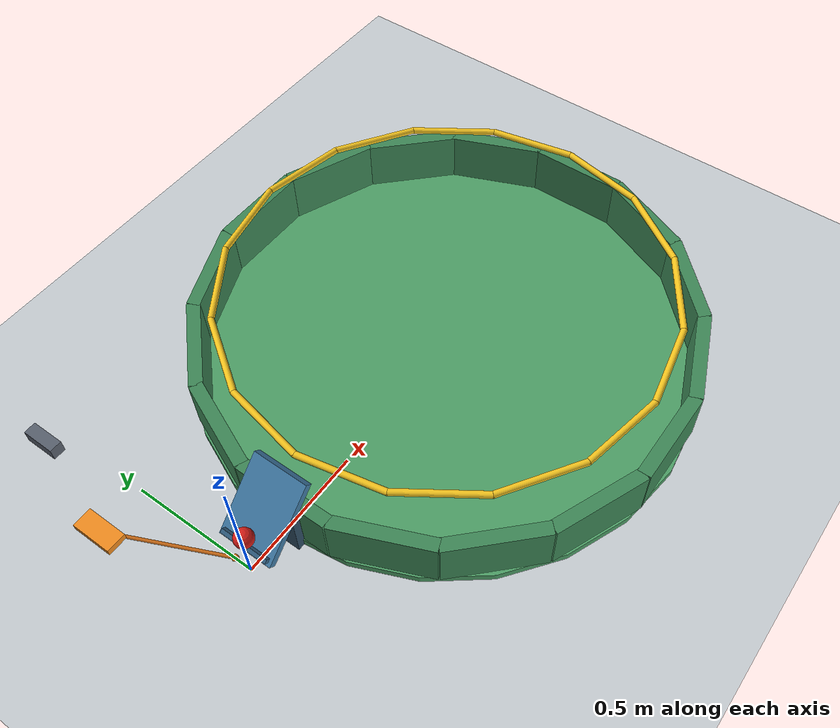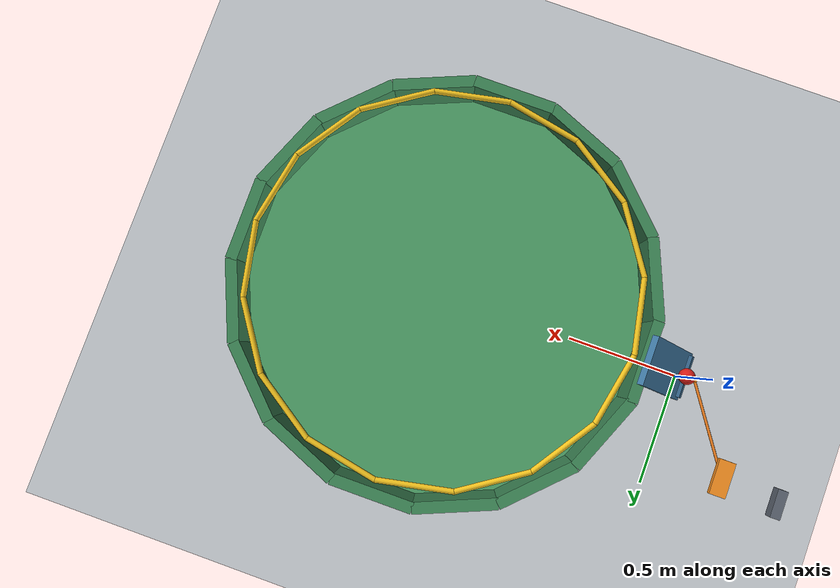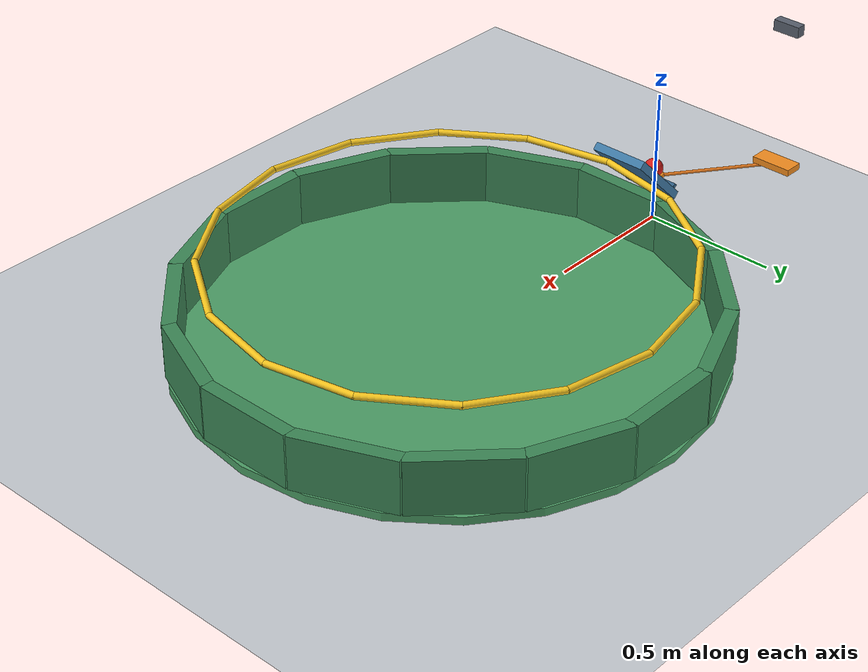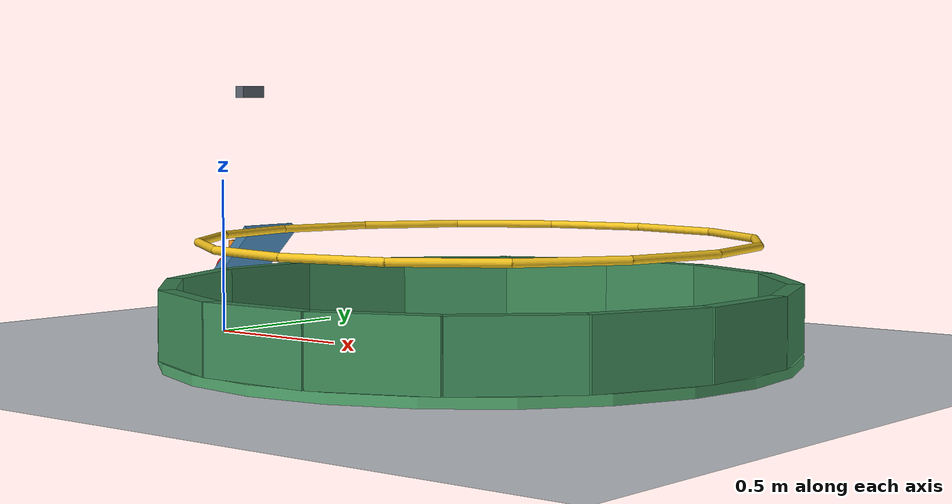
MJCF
<mujoco model="drop_spring_ramp_hoop_cup">
  <compiler angle="degree" autolimits="true"/>
  <option timestep="0.002" gravity="0 0 -9.81" integrator="implicitfast" solver="Newton" iterations="80" tolerance="1e-10"/>
  <size njmax="300" nconmax="150"/>
  <visual>
    <headlight ambient="0.45 0.45 0.45" diffuse="0.7 0.7 0.7" specular="0.2 0.2 0.2"/>
  </visual>

  <worldbody>
    <light name="overhead_light" pos="0.5 -1.5 3" dir="0 0 -1"/>
    <camera name="overview" pos="2.7 -3.5 2.1" xyaxes="0.84 0.54 0 -0.23 0.36 0.90"/>
    <geom name="floor" type="plane" size="4 4 0.1" rgba="0.78 0.80 0.82 1" friction="0.8 0.01 0.01" condim="6"/>

    <body name="plunger" pos="-0.0378302 0 0.1623744">
      <inertial pos="-0.08 0.15 0.04" mass="0.25" diaginertia="0.002 0.002 0.002"/>
      <joint name="plunger_slide" type="slide" axis="0.70710678 0 0.70710678" limited="true" range="-0.19 0.16" stiffness="250" springref="0.00693672" damping="0.35" solreflimit="0.008 1"/>
      <geom name="plunger_tip" type="sphere" size="0.012" rgba="0.95 0.55 0.12 1" priority="1" condim="3" friction="0 0 0" solref="0.006 1" solimp="0.95 0.99 0.001"/>
      <geom name="plunger_arm" type="capsule" fromto="0 0 0 -0.20 0.35 0.10" size="0.006" rgba="0.85 0.45 0.10 1" contype="0" conaffinity="0"/>
      <geom name="plunger_compression_plate" type="box" pos="-0.20 0.35 0.10" size="0.035 0.075 0.012" rgba="0.95 0.55 0.12 1" priority="2" condim="1" friction="0 0 0" solref="0.006 1" solimp="0.95 0.99 0.001"/>
    </body>

    <!-- The block's bottom starts exactly 0.5 m above the compression plate. -->
    <body name="block" pos="-0.2378302 0.35 0.7943744">
      <freejoint name="block_free"/>
      <geom name="block_geom" type="box" size="0.018 0.05 0.02" mass="1.5" rgba="0.35 0.38 0.43 1" friction="0 0 0" condim="1" solref="0.006 1" solimp="0.95 0.99 0.001"/>
    </body>

    <body name="ball" pos="0.01308148 0 0.21328599">
      <freejoint name="ball_free"/>
      <geom name="ball_geom" type="sphere" size="0.035" mass="0.06" rgba="0.85 0.12 0.10 1" condim="6" friction="0.4 0.001 0.0001" solref="0.008 1" solimp="0.95 0.99 0.001"/>
    </body>

    <!-- A smooth 45-degree ramp. The split toe stop leaves room for the striker. -->
    <body name="ramp">
      <geom name="ramp_surface" type="box" pos="0.11667262 0 0.24545942" quat="0.92387953 0 -0.38268343 0" size="0.15 0.105 0.015" rgba="0.25 0.48 0.65 1" priority="1" condim="6" friction="0.02 0.001 0.0001" solref="0.008 1" solimp="0.95 0.99 0.001"/>
      <geom name="ramp_toe_left" type="box" pos="0.00777817 0.055 0.17050610" quat="0.92387953 0 -0.38268343 0" size="0.008 0.038 0.009" rgba="0.20 0.38 0.52 1" priority="1" condim="3" friction="0.02 0.001 0.0001" solref="0.008 1"/>
      <geom name="ramp_toe_right" type="box" pos="0.00777817 -0.055 0.17050610" quat="0.92387953 0 -0.38268343 0" size="0.008 0.038 0.009" rgba="0.20 0.38 0.52 1" priority="1" condim="3" friction="0.02 0.001 0.0001" solref="0.008 1"/>
      <geom name="ramp_support" type="box" pos="0.17 0 0.10" size="0.025 0.08 0.10" rgba="0.18 0.30 0.39 1"/>
    </body>

    <!-- Horizontal flight hoop: the ball passes downward through its opening. -->
    <body name="hoop" pos="1.1 0 0.35">
      <geom name="hoop_segment_00" type="capsule" fromto="0.820000 0 0 0.757581 0.313799 0" size="0.012" rgba="0.96 0.77 0.12 1"/>
      <geom name="hoop_segment_01" type="capsule" fromto="0.757581 0.313799 0 0.579828 0.579828 0" size="0.012" rgba="0.96 0.77 0.12 1"/>
      <geom name="hoop_segment_02" type="capsule" fromto="0.579828 0.579828 0 0.313799 0.757581 0" size="0.012" rgba="0.96 0.77 0.12 1"/>
      <geom name="hoop_segment_03" type="capsule" fromto="0.313799 0.757581 0 0 0.820000 0" size="0.012" rgba="0.96 0.77 0.12 1"/>
      <geom name="hoop_segment_04" type="capsule" fromto="0 0.820000 0 -0.313799 0.757581 0" size="0.012" rgba="0.96 0.77 0.12 1"/>
      <geom name="hoop_segment_05" type="capsule" fromto="-0.313799 0.757581 0 -0.579828 0.579828 0" size="0.012" rgba="0.96 0.77 0.12 1"/>
      <geom name="hoop_segment_06" type="capsule" fromto="-0.579828 0.579828 0 -0.757581 0.313799 0" size="0.012" rgba="0.96 0.77 0.12 1"/>
      <geom name="hoop_segment_07" type="capsule" fromto="-0.757581 0.313799 0 -0.820000 0 0" size="0.012" rgba="0.96 0.77 0.12 1"/>
      <geom name="hoop_segment_08" type="capsule" fromto="-0.820000 0 0 -0.757581 -0.313799 0" size="0.012" rgba="0.96 0.77 0.12 1"/>
      <geom name="hoop_segment_09" type="capsule" fromto="-0.757581 -0.313799 0 -0.579828 -0.579828 0" size="0.012" rgba="0.96 0.77 0.12 1"/>
      <geom name="hoop_segment_10" type="capsule" fromto="-0.579828 -0.579828 0 -0.313799 -0.757581 0" size="0.012" rgba="0.96 0.77 0.12 1"/>
      <geom name="hoop_segment_11" type="capsule" fromto="-0.313799 -0.757581 0 0 -0.820000 0" size="0.012" rgba="0.96 0.77 0.12 1"/>
      <geom name="hoop_segment_12" type="capsule" fromto="0 -0.820000 0 0.313799 -0.757581 0" size="0.012" rgba="0.96 0.77 0.12 1"/>
      <geom name="hoop_segment_13" type="capsule" fromto="0.313799 -0.757581 0 0.579828 -0.579828 0" size="0.012" rgba="0.96 0.77 0.12 1"/>
      <geom name="hoop_segment_14" type="capsule" fromto="0.579828 -0.579828 0 0.757581 -0.313799 0" size="0.012" rgba="0.96 0.77 0.12 1"/>
      <geom name="hoop_segment_15" type="capsule" fromto="0.757581 -0.313799 0 0.820000 0 0" size="0.012" rgba="0.96 0.77 0.12 1"/>
    </body>

    <!-- Broad catching cup with dissipative six-dimensional contact friction. -->
    <body name="cup" pos="1.1 0 0">
      <geom name="cup_bottom" type="cylinder" pos="0 0 0.015" size="0.94 0.015" rgba="0.30 0.62 0.40 1" priority="2" condim="6" friction="1 0.01 0.02" solref="0.015 1" solimp="0.95 0.99 0.001"/>
      <geom name="cup_wall_00" type="box" pos="0.900000 0 0.13" euler="0 0 0" size="0.025 0.181 0.10" rgba="0.24 0.53 0.34 1" priority="2" condim="6" friction="1 0.01 0.02" solref="0.015 1"/>
      <geom name="cup_wall_01" type="box" pos="0.831492 0.344415 0.13" euler="0 0 22.5" size="0.025 0.181 0.10" rgba="0.24 0.53 0.34 1" priority="2" condim="6" friction="1 0.01 0.02" solref="0.015 1"/>
      <geom name="cup_wall_02" type="box" pos="0.636396 0.636396 0.13" euler="0 0 45" size="0.025 0.181 0.10" rgba="0.24 0.53 0.34 1" priority="2" condim="6" friction="1 0.01 0.02" solref="0.015 1"/>
      <geom name="cup_wall_03" type="box" pos="0.344415 0.831492 0.13" euler="0 0 67.5" size="0.025 0.181 0.10" rgba="0.24 0.53 0.34 1" priority="2" condim="6" friction="1 0.01 0.02" solref="0.015 1"/>
      <geom name="cup_wall_04" type="box" pos="0 0.900000 0.13" euler="0 0 90" size="0.025 0.181 0.10" rgba="0.24 0.53 0.34 1" priority="2" condim="6" friction="1 0.01 0.02" solref="0.015 1"/>
      <geom name="cup_wall_05" type="box" pos="-0.344415 0.831492 0.13" euler="0 0 112.5" size="0.025 0.181 0.10" rgba="0.24 0.53 0.34 1" priority="2" condim="6" friction="1 0.01 0.02" solref="0.015 1"/>
      <geom name="cup_wall_06" type="box" pos="-0.636396 0.636396 0.13" euler="0 0 135" size="0.025 0.181 0.10" rgba="0.24 0.53 0.34 1" priority="2" condim="6" friction="1 0.01 0.02" solref="0.015 1"/>
      <geom name="cup_wall_07" type="box" pos="-0.831492 0.344415 0.13" euler="0 0 157.5" size="0.025 0.181 0.10" rgba="0.24 0.53 0.34 1" priority="2" condim="6" friction="1 0.01 0.02" solref="0.015 1"/>
      <geom name="cup_wall_08" type="box" pos="-0.900000 0 0.13" euler="0 0 180" size="0.025 0.181 0.10" rgba="0.24 0.53 0.34 1" priority="2" condim="6" friction="1 0.01 0.02" solref="0.015 1"/>
      <geom name="cup_wall_09" type="box" pos="-0.831492 -0.344415 0.13" euler="0 0 202.5" size="0.025 0.181 0.10" rgba="0.24 0.53 0.34 1" priority="2" condim="6" friction="1 0.01 0.02" solref="0.015 1"/>
      <geom name="cup_wall_10" type="box" pos="-0.636396 -0.636396 0.13" euler="0 0 225" size="0.025 0.181 0.10" rgba="0.24 0.53 0.34 1" priority="2" condim="6" friction="1 0.01 0.02" solref="0.015 1"/>
      <geom name="cup_wall_11" type="box" pos="-0.344415 -0.831492 0.13" euler="0 0 247.5" size="0.025 0.181 0.10" rgba="0.24 0.53 0.34 1" priority="2" condim="6" friction="1 0.01 0.02" solref="0.015 1"/>
      <geom name="cup_wall_12" type="box" pos="0 -0.900000 0.13" euler="0 0 270" size="0.025 0.181 0.10" rgba="0.24 0.53 0.34 1" priority="2" condim="6" friction="1 0.01 0.02" solref="0.015 1"/>
      <geom name="cup_wall_13" type="box" pos="0.344415 -0.831492 0.13" euler="0 0 292.5" size="0.025 0.181 0.10" rgba="0.24 0.53 0.34 1" priority="2" condim="6" friction="1 0.01 0.02" solref="0.015 1"/>
      <geom name="cup_wall_14" type="box" pos="0.636396 -0.636396 0.13" euler="0 0 315" size="0.025 0.181 0.10" rgba="0.24 0.53 0.34 1" priority="2" condim="6" friction="1 0.01 0.02" solref="0.015 1"/>
      <geom name="cup_wall_15" type="box" pos="0.831492 -0.344415 0.13" euler="0 0 337.5" size="0.025 0.181 0.10" rgba="0.24 0.53 0.34 1" priority="2" condim="6" friction="1 0.01 0.02" solref="0.015 1"/>
    </body>
  </worldbody>

  <keyframe>
    <key name="start"/>
  </keyframe>
</mujoco>
